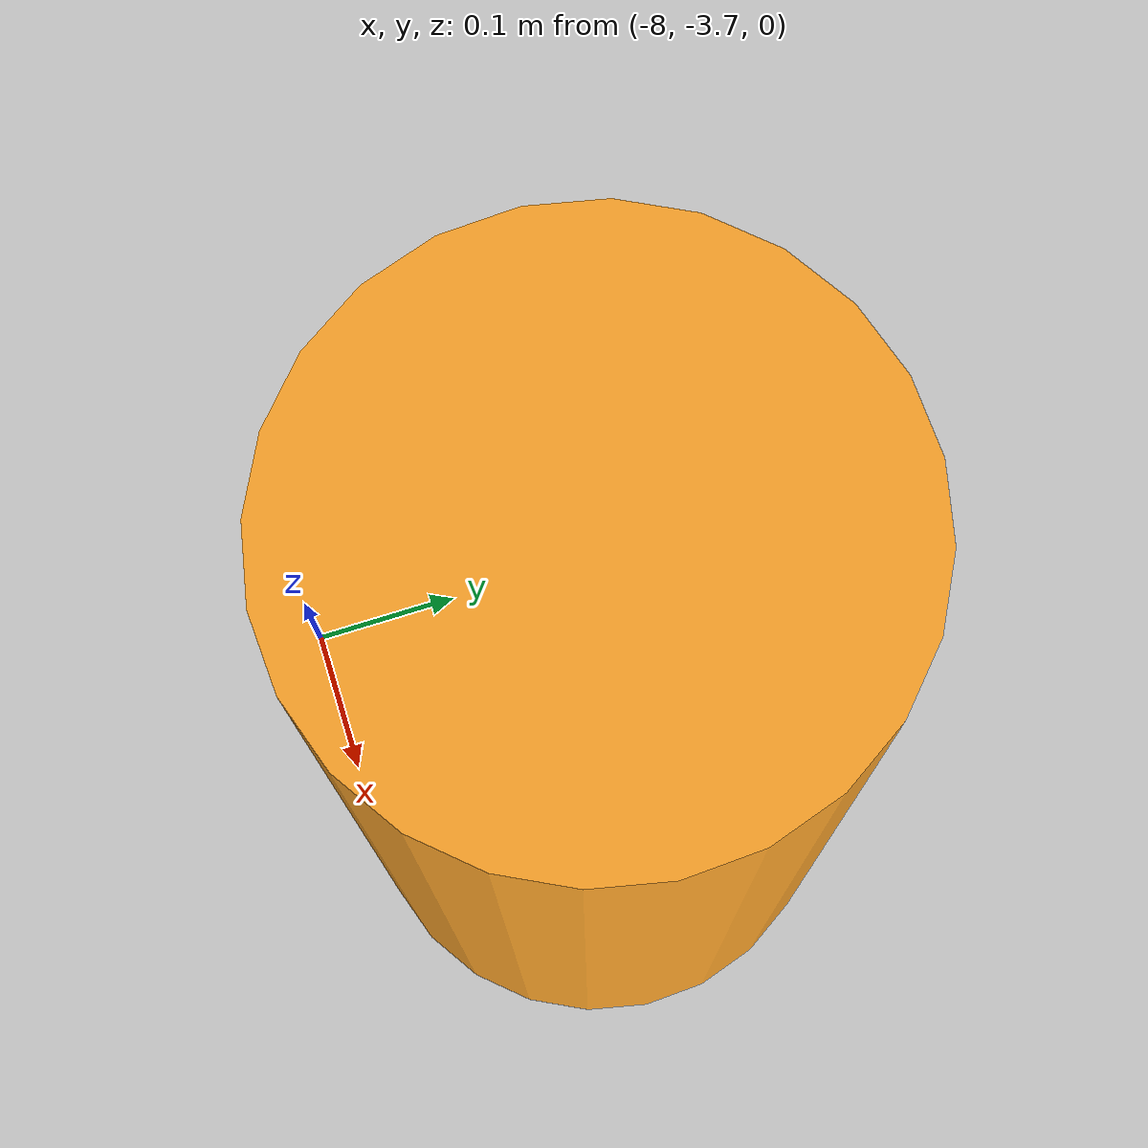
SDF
<sdf version="1.6">
 <world name="default">
  <atmosphere type="adiabatic"/>
  <wind><linear_velocity>0 0 0</linear_velocity></wind>
  <gravity>0 0 -9.8</gravity>
  <model name="dyn_box">
   <pose>-0.602477 1.505 0.619695 0 0 -2.52083</pose>
   <static>0</static>
   <allow_auto_disable>0</allow_auto_disable>
   <link name="link">
    <collision name="collision">
     <geometry><box><size>2.72257 1.316 1.23939</size></box></geometry>
     <max_contacts>20</max_contacts>
    </collision>
    <visual name="visual">
     <geometry><box><size>2.72257 1.316 1.23939</size></box></geometry>
     <material>
      <ambient>0.498039 0.560784 0.305882 1</ambient>
      <diffuse>0.4980392156862745 0.5607843137254902 0.3058823529411765 1</diffuse>
     </material>
     <transparency>0.0</transparency>
    </visual>
    <inertial>
     <inertia>
      <ixx>0.07296955670938388</ixx>
      <iyy>0.19980972966883626</iyy>
      <izz>0.2041810908620485</izz>
      <ixy>0.0</ixy>
      <ixz>0.0</ixz>
      <iyz>0.0</iyz>
     </inertia>
     <mass>0.26794653064994844</mass>
    </inertial>
   </link>
  </model>
  <model name="static_cylinder">
   <pose>-7.83681 -3.54037 0.335933 0 0 -0.33672</pose>
   <static>1</static>
   <allow_auto_disable>0</allow_auto_disable>
   <link name="link">
    <collision name="collision">
     <geometry>
      <cylinder><radius>0.15917242432819956</radius><length>0.6718652378937633</length></cylinder>
     </geometry>
     <max_contacts>20</max_contacts>
    </collision>
    <visual name="visual">
     <geometry>
      <cylinder><radius>0.15917242432819956</radius><length>0.6718652378937633</length></cylinder>
     </geometry>
     <material>
      <ambient>1 0.65098 0.168627 1</ambient>
      <diffuse>1.0 0.6509803921568628 0.16862745098039217 1</diffuse>
     </material>
     <transparency>0.0</transparency>
    </visual>
   </link>
  </model>
  <model name="dyn_box_1">
   <pose>-6.08493 -0.276414 1.09792 0 0 -1.52906</pose>
   <static>0</static>
   <allow_auto_disable>0</allow_auto_disable>
   <link name="link">
    <collision name="collision">
     <geometry><box><size>0.654946 0.585378 2.19584</size></box></geometry>
     <max_contacts>20</max_contacts>
    </collision>
    <visual name="visual">
     <geometry><box><size>0.654946 0.585378 2.19584</size></box></geometry>
     <material>
      <ambient>0.807843 0.701961 0.00392157 1</ambient>
      <diffuse>0.807843137254902 0.7019607843137254 0.00392156862745098 1</diffuse>
     </material>
     <transparency>0.0</transparency>
    </visual>
    <inertial>
     <inertia>
      <ixx>0.3465203545373541</ixx>
      <iyy>0.35231003933942273</iyy>
      <izz>0.05177444888709007</izz>
      <ixy>0.0</ixy>
      <ixz>0.0</ixz>
      <iyz>0.0</iyz>
     </inertia>
     <mass>0.805177857173867</mass>
    </inertial>
   </link>
  </model>
  <model name="static_cylinder_1">
   <pose>-5.16227 -2.42153 0.262675 0 -0 1.53346</pose>
   <static>1</static>
   <allow_auto_disable>0</allow_auto_disable>
   <link name="link">
    <collision name="collision">
     <geometry>
      <cylinder><radius>1.712162874234752</radius><length>0.5253508631421895</length></cylinder>
     </geometry>
     <max_contacts>20</max_contacts>
    </collision>
    <visual name="visual">
     <geometry>
      <cylinder><radius>1.712162874234752</radius><length>0.5253508631421895</length></cylinder>
     </geometry>
     <material>
      <ambient>0.054902 0.529412 0.8 1</ambient>
      <diffuse>0.054901960784313725 0.5294117647058824 0.8 1</diffuse>
     </material>
     <transparency>0.0</transparency>
    </visual>
   </link>
  </model>
  <include>
   <uri>model://ceiling_4</uri>
   <pose>0 0 3 0 -0 0</pose>
   <name>ceiling_4</name>
   <static>1</static>
  </include>
  <include><uri>model://ground_plane</uri><name>ground_plane</name><static>1</static></include>
  <include><uri>model://sun</uri></include>
  <physics name="default_physics" default="0" type="ode">
   <gravity>0 0 -9.8066</gravity>
   <ode>
    <solver>
     <type>quick</type>
     <iters>10</iters>
     <sor>1.3</sor>
     <use_dynamic_moi_rescaling>0</use_dynamic_moi_rescaling>
    </solver>
    <constraints>
     <cfm>0</cfm>
     <erp>0.2</erp>
     <contact_max_correcting_vel>100</contact_max_correcting_vel>
     <contact_surface_layer>0.001</contact_surface_layer>
    </constraints>
   </ode>
   <max_step_size>0.004</max_step_size>
   <real_time_factor>1</real_time_factor>
   <real_time_update_rate>250</real_time_update_rate>
   <magnetic_field>6.0e-6 2.3e-5 -4.2e-5</magnetic_field>
  </physics>
  <scene>
   <ambient>0.8 0.8 0.8 1</ambient>
   <background>0.8 0.9 1 1</background>
   <shadows>false</shadows>
   <grid>false</grid>
   <origin_visual>false</origin_visual>
  </scene>
 </world>
</sdf>

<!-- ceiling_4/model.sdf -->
<sdf version="1.6">
  <model name="ceiling_4">
    <pose frame="">0 0 5 0 -0 0</pose>
    <static>1</static>
    <self_collide>0</self_collide>
    <allow_auto_disable>0</allow_auto_disable>
    <link name="mesh">
      <kinematic>0</kinematic>
      <gravity>1</gravity>
      <self_collide>0</self_collide>
      <collision name="collision">
        <geometry>
          <mesh>
            <uri>model://ceiling_4/meshes/tZqEuFnRRY.stl</uri>
            <scale>1 1 1</scale>
          </mesh>
        </geometry>
        <pose frame="">-0.791666 -1.30895 -0.075 0 -0 0</pose>
        <max_contacts>20</max_contacts>
      </collision>
      <visual name="visual">
        <geometry>
          <mesh>
            <uri>model://ceiling_4/meshes/PZRxPYRhGy.stl</uri>
            <scale>1 1 1</scale>
          </mesh>
        </geometry>
        <material>
          <ambient>1 0.694118 0.427451 1</ambient>
          <diffuse>1.0 0.6941176470588235 0.42745098039215684 1</diffuse>
        </material>
        <pose frame="">-0.791666 -1.30895 -0.075 0 -0 0</pose>
        <cast_shadows>1</cast_shadows>
        <transparency>0.0</transparency>
      </visual>
      <pose frame="">0 0 0 0 -0 0</pose>
    </link>
  </model>
</sdf>
